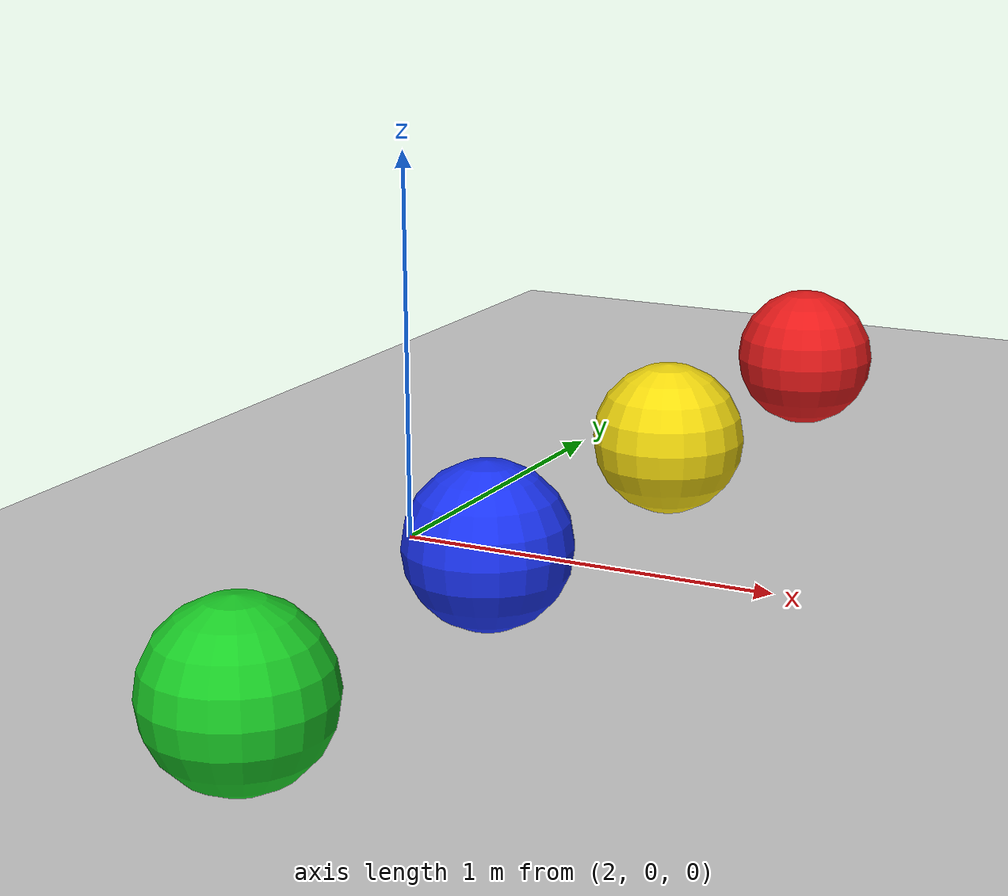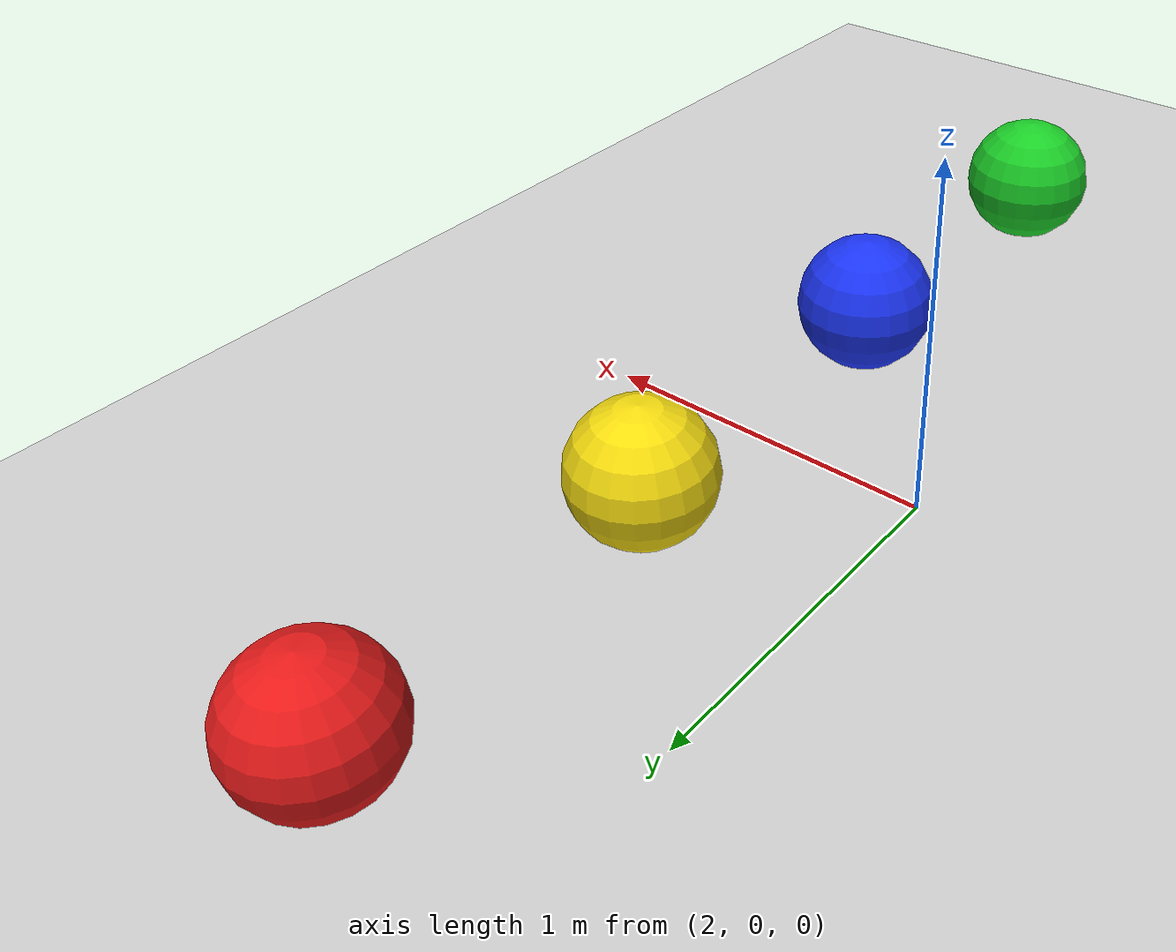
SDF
<?xml version="1.0"?>
<sdf version="1.6">
  <world name="colored_balls">

    <!-- ==================== Physics ==================== -->
    <physics type="ode">
      <real_time_update_rate>1000.0</real_time_update_rate>
      <max_step_size>0.001</max_step_size>
      <real_time_factor>1</real_time_factor>
    </physics>

    <!-- ==================== Scene ==================== -->
    <scene>
      <ambient>0.6 0.6 0.6 1</ambient>
      <background>0.4 0.5 0.6 1</background>
      <shadows>false</shadows>
    </scene>

    <!-- ==================== Lighting ==================== -->
    <light name="sun" type="directional">
      <cast_shadows>true</cast_shadows>
      <pose>0 0 10 0 0 0</pose>
      <diffuse>0.9 0.9 0.9 1</diffuse>
      <specular>0.3 0.3 0.3 1</specular>
      <direction>-0.3 0.3 -1</direction>
    </light>

    <!-- ==================== Gazebo ROS State Plugin ==================== -->
    <plugin name="gazebo_ros_state" filename="libgazebo_ros_state.so">
      <ros>
        <namespace>/</namespace>
      </ros>
    </plugin>

    <!-- ==================== Ground Plane ==================== -->
    <model name="ground_plane">
      <static>true</static>
      <link name="link">
        <collision name="collision">
          <geometry>
            <plane>
              <normal>0 0 1</normal>
              <size>100 100</size>
            </plane>
          </geometry>
          <surface>
            <friction>
              <ode>
                <mu>100</mu>
                <mu2>50</mu2>
              </ode>
            </friction>
          </surface>
        </collision>
        <visual name="visual">
          <cast_shadows>false</cast_shadows>
          <geometry>
            <plane>
              <normal>0 0 1</normal>
              <size>100 100</size>
            </plane>
          </geometry>
          <material>
            <script>
              <uri>file://media/materials/scripts/gazebo.material</uri>
              <name>Gazebo/Grey</name>
            </script>
          </material>
        </visual>
      </link>
    </model>

    <!-- ==================== 红球 (Red Ball) ==================== -->
    <model name="red_ball">
      <static>false</static>
      <!-- 球心位置: x=机器人前方距离(m), y=横向偏移(m，正左负右), z=球半径 -->
      <pose>2.5 1.5 0.20 0 0 0</pose>
      <link name="link">
        <inertial>
          <mass>0.2</mass>
          <inertia>
            <!-- 实心球惯量 I = 2/5 * m * r^2，r=0.20时 I=0.0032 -->
            <ixx>0.0032</ixx><ixy>0</ixy><ixz>0</ixz>
            <iyy>0.0032</iyy><iyz>0</iyz>
            <izz>0.0032</izz>
          </inertia>
        </inertial>
        <collision name="collision">
          <geometry>
            <!-- 球半径 (m)：调大/调小改这里，同时同步修改下方 visual 和上方 pose 的 z -->
            <sphere><radius>0.20</radius></sphere>
          </geometry>
          <surface>
            <friction>
              <ode><mu>0.6</mu><mu2>0.6</mu2></ode>
            </friction>
            <bounce>
              <restitution_coefficient>0.5</restitution_coefficient>
              <threshold>0</threshold>
            </bounce>
          </surface>
        </collision>
        <visual name="visual">
          <geometry>
            <sphere><radius>0.20</radius></sphere>
          </geometry>
          <material>
            <ambient>0.9 0.1 0.1 1</ambient>
            <diffuse>0.9 0.1 0.1 1</diffuse>
            <specular>0.5 0.3 0.3 50</specular>
          </material>
        </visual>
      </link>
    </model>

    <!-- ==================== 黄球 (Yellow Ball) ==================== -->
    <model name="yellow_ball">
      <static>false</static>
      <!-- 球心位置: x=机器人前方距离(m), y=横向偏移(m，正左负右), z=球半径 -->
      <pose>2.5 0.5 0.20 0 0 0</pose>
      <link name="link">
        <inertial>
          <mass>0.2</mass>
          <inertia>
            <!-- 实心球惯量 I = 2/5 * m * r^2，r=0.20时 I=0.0032 -->
            <ixx>0.0032</ixx><ixy>0</ixy><ixz>0</ixz>
            <iyy>0.0032</iyy><iyz>0</iyz>
            <izz>0.0032</izz>
          </inertia>
        </inertial>
        <collision name="collision">
          <geometry>
            <!-- 球半径 (m)：调大/调小改这里，同时同步修改下方 visual 和上方 pose 的 z -->
            <sphere><radius>0.20</radius></sphere>
          </geometry>
          <surface>
            <friction>
              <ode><mu>0.6</mu><mu2>0.6</mu2></ode>
            </friction>
            <bounce>
              <restitution_coefficient>0.5</restitution_coefficient>
              <threshold>0</threshold>
            </bounce>
          </surface>
        </collision>
        <visual name="visual">
          <geometry>
            <sphere><radius>0.20</radius></sphere>
          </geometry>
          <material>
            <ambient>0.95 0.85 0.05 1</ambient>
            <diffuse>0.95 0.85 0.05 1</diffuse>
            <specular>0.5 0.5 0.2 50</specular>
          </material>
        </visual>
      </link>
    </model>

    <!-- ==================== 蓝球 (Blue Ball) ==================== -->
    <model name="blue_ball">
      <static>false</static>
      <!-- 球心位置: x=机器人前方距离(m), y=横向偏移(m，正左负右), z=球半径 -->
      <pose>2.5 -0.5 0.20 0 0 0</pose>
      <link name="link">
        <inertial>
          <mass>0.2</mass>
          <inertia>
            <!-- 实心球惯量 I = 2/5 * m * r^2，r=0.20时 I=0.0032 -->
            <ixx>0.0032</ixx><ixy>0</ixy><ixz>0</ixz>
            <iyy>0.0032</iyy><iyz>0</iyz>
            <izz>0.0032</izz>
          </inertia>
        </inertial>
        <collision name="collision">
          <geometry>
            <!-- 球半径 (m)：调大/调小改这里，同时同步修改下方 visual 和上方 pose 的 z -->
            <sphere><radius>0.20</radius></sphere>
          </geometry>
          <surface>
            <friction>
              <ode><mu>0.6</mu><mu2>0.6</mu2></ode>
            </friction>
            <bounce>
              <restitution_coefficient>0.5</restitution_coefficient>
              <threshold>0</threshold>
            </bounce>
          </surface>
        </collision>
        <visual name="visual">
          <geometry>
            <sphere><radius>0.20</radius></sphere>
          </geometry>
          <material>
            <ambient>0.1 0.2 0.95 1</ambient>
            <diffuse>0.1 0.2 0.95 1</diffuse>
            <specular>0.3 0.3 0.6 50</specular>
          </material>
        </visual>
      </link>
    </model>

    <!-- ==================== 绿球 (Green Ball) ==================== -->
    <model name="green_ball">
      <static>false</static>
      <!-- 球心位置: x=机器人前方距离(m), y=横向偏移(m，正左负右), z=球半径 -->
      <pose>2.5 -1.5 0.20 0 0 0</pose>
      <link name="link">
        <inertial>
          <mass>0.2</mass>
          <inertia>
            <!-- 实心球惯量 I = 2/5 * m * r^2，r=0.20时 I=0.0032 -->
            <ixx>0.0032</ixx><ixy>0</ixy><ixz>0</ixz>
            <iyy>0.0032</iyy><iyz>0</iyz>
            <izz>0.0032</izz>
          </inertia>
        </inertial>
        <collision name="collision">
          <geometry>
            <!-- 球半径 (m)：调大/调小改这里，同时同步修改下方 visual 和上方 pose 的 z -->
            <sphere><radius>0.20</radius></sphere>
          </geometry>
          <surface>
            <friction>
              <ode><mu>0.6</mu><mu2>0.6</mu2></ode>
            </friction>
            <bounce>
              <restitution_coefficient>0.5</restitution_coefficient>
              <threshold>0</threshold>
            </bounce>
          </surface>
        </collision>
        <visual name="visual">
          <geometry>
            <sphere><radius>0.20</radius></sphere>
          </geometry>
          <material>
            <ambient>0.1 0.8 0.15 1</ambient>
            <diffuse>0.1 0.8 0.15 1</diffuse>
            <specular>0.2 0.5 0.2 50</specular>
          </material>
        </visual>
      </link>
    </model>

  </world>
</sdf>
